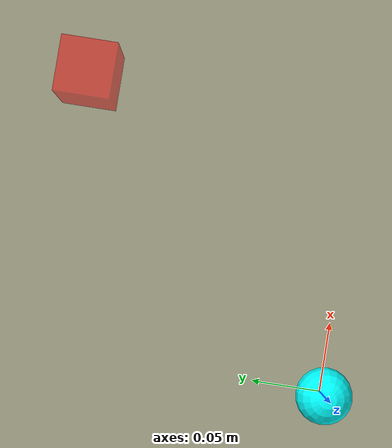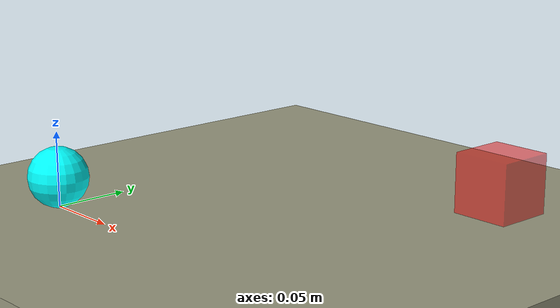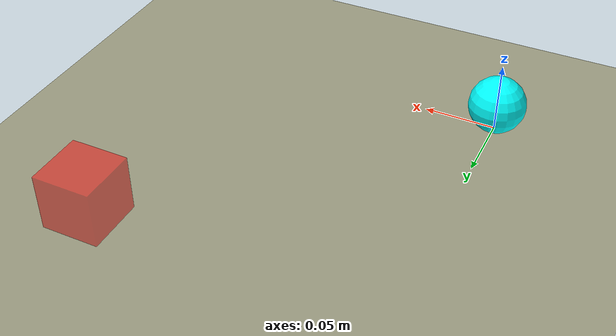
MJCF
<mujoco model="box">
	<compiler inertiafromgeom="true" angle="degree" coordinate="local"/>
	<worldbody>

    <geom name="tableTop" type="box" pos="0 0 -0.01" size="0.4 0.4 0.01"
          rgba=".6 .6 .5 1" contype="1" conaffinity="1" />
    <body name="ball" pos="0 0 0">
      <joint name='ballx' type='slide' axis='1 0 0' pos='0 0 0' limited='false' damping='0.1' armature='0' stiffness='0'/>
      <joint name='bally' type='slide' axis='0 1 0' pos='0 0 0' limited='false' damping='0.1' armature='0' stiffness='0'/>
		  <geom type="sphere" size="0.02" pos="0 0 0.02" rgba="0 1 1 1" />
    </body>

    <site name="goal" pos="0.2 0.2 0.02" size="0.02 0.02 0.02" type="box"
              rgba="1 0 0 0.5"/>

	</worldbody>
</mujoco>
